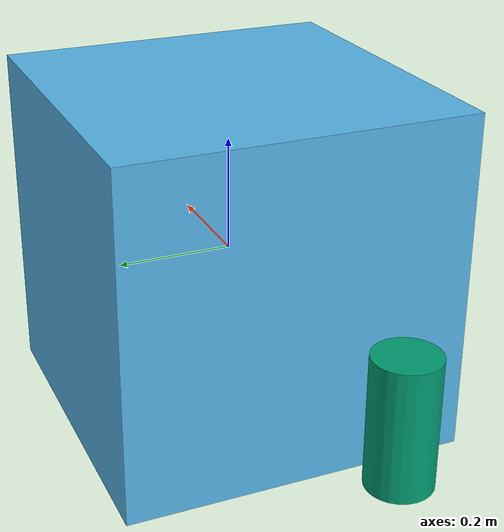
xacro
<?xml version="1.0"?>
<robot name="myfirst">
  <link name="world"/>

  <link name="base_link">
    <inertial>
      <mass value="1.0"/>
      <origin rpy="0 0 0" xyz="0 0 0"/>
      <inertia ixx="0.1" ixy="0.0" ixz="0.0" iyy="0.1" iyz="0.0" izz="0.1"/>
    </inertial>
    <visual>
      <origin rpy="0 0 0" xyz="0 0 0"/>
      <geometry>
        <box size="0.6 0.6 0.6"/>
      </geometry>
    </visual>
    <collision>
      <origin rpy="0 0 0" xyz="0 0 0"/>
      <geometry>
        <box size="0.6 0.6 0.6"/>
      </geometry>
    </collision>
  </link>

  <joint name="body" type="fixed">
    <parent link="world"/>
    <child link="base_link"/>
    <origin rpy="0 0 0" xyz="0 0 0"/>
  </joint>

  <!-- Add thrusters to both sides -->
  <link name="left_thruster">
    <!-- Define the visual and collision properties for the thruster -->
    <visual>
      <origin rpy="0 0 0" xyz="-0.3 0 0"/> <!-- Adjust the position accordingly -->
      <geometry>
        <cylinder radius="0.05" length="0.2"/> <!-- Cylinder shape -->
      </geometry>
    </visual>
    <collision>
      <origin rpy="0 0 0" xyz="-0.3 0 0"/>
      <geometry>
        <cylinder radius="0.05" length="0.2"/>
      </geometry>
    </collision>
  </link>

  <link name="right_thruster">
    <!-- Define the visual and collision properties for the thruster -->
    <visual>
      <origin rpy="0 0 0" xyz="0.3 0 0"/> <!-- Adjust the position accordingly -->
      <geometry>
        <cylinder radius="0.05" length="0.2"/> <!-- Cylinder shape -->
      </geometry>
    </visual>
    <collision>
      <origin rpy="0 0 0" xyz="0.3 0 0"/>
      <geometry>
        <cylinder radius="0.05" length="0.2"/>
      </geometry>
    </collision>
  </link>

  <!-- Add joints to connect the thrusters to the base_link -->
  <joint name="left_thruster_joint" type="fixed">
    <parent link="base_link"/>
    <child link="left_thruster"/>
    <origin rpy="0 0 0" xyz="-0.3 0 0"/>
  </joint>

  <joint name="right_thruster_joint" type="fixed">
    <parent link="base_link"/>
    <child link="right_thruster"/>
    <origin rpy="0 0 0" xyz="0.3 0 0"/>
  </joint>
</robot>
